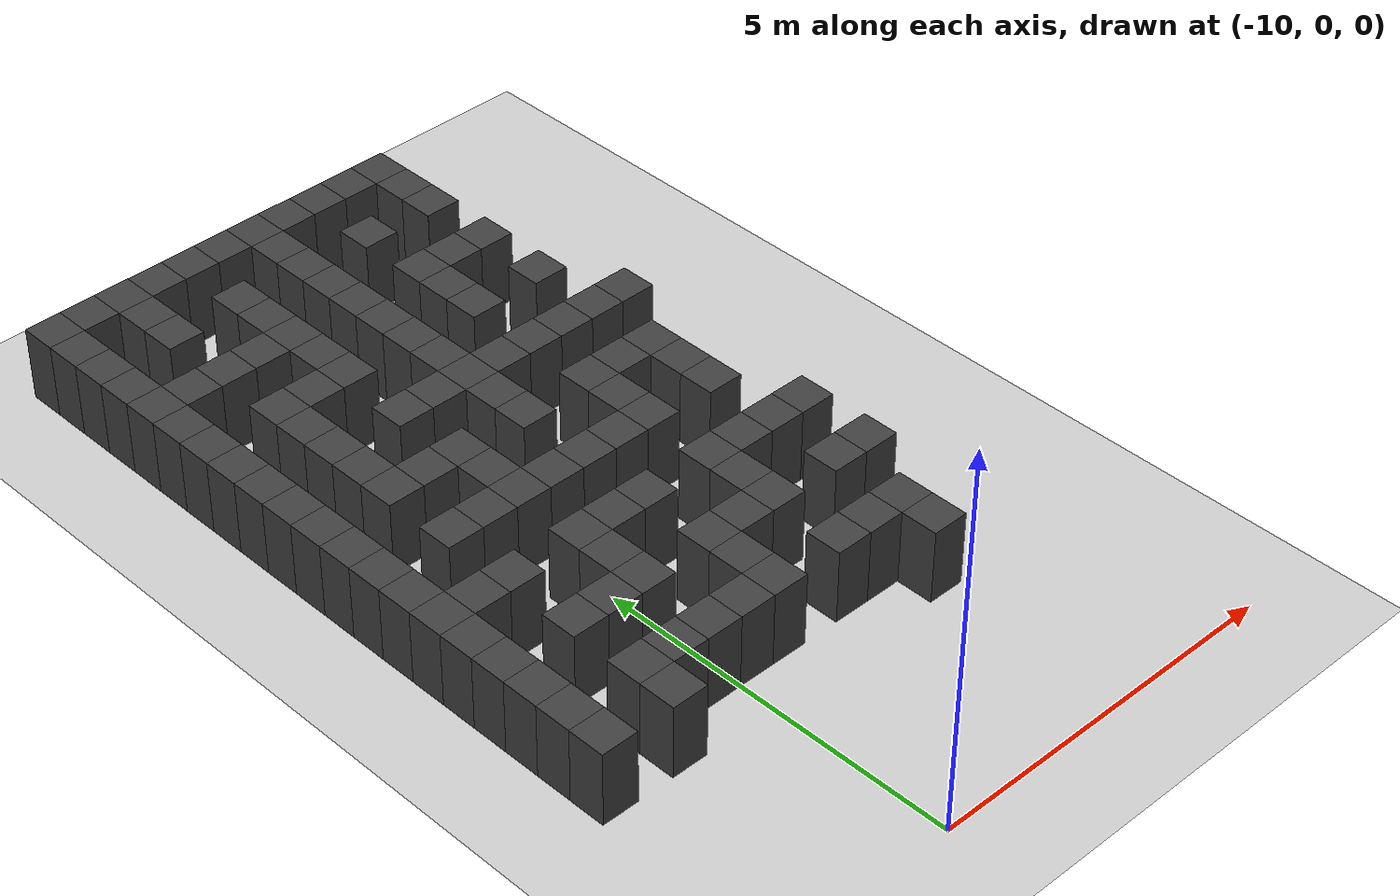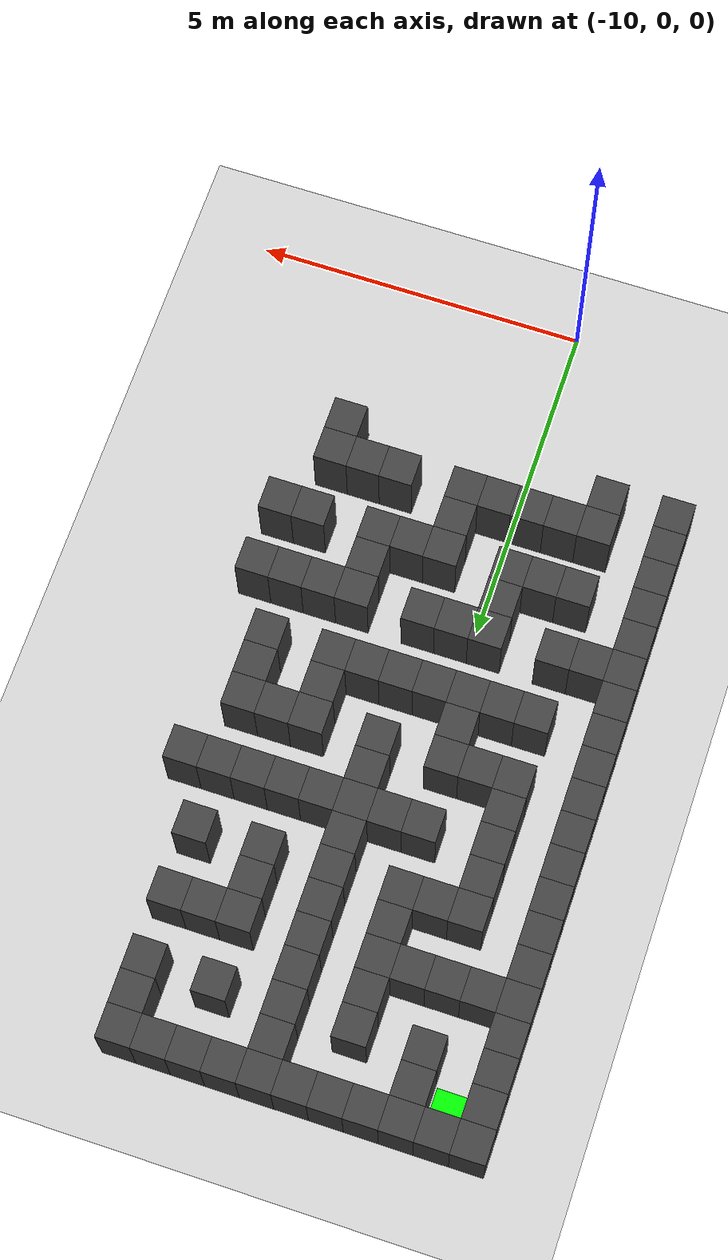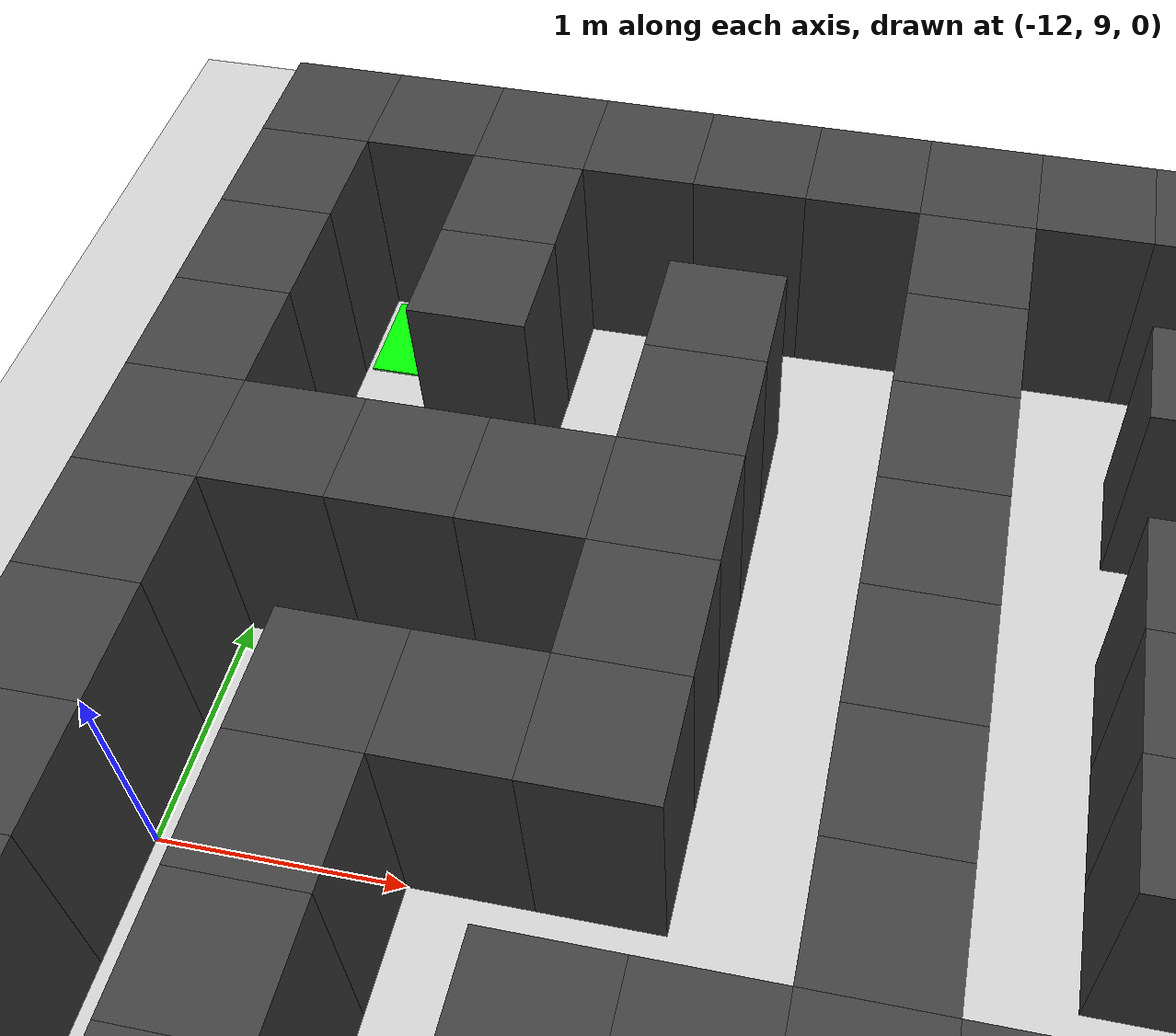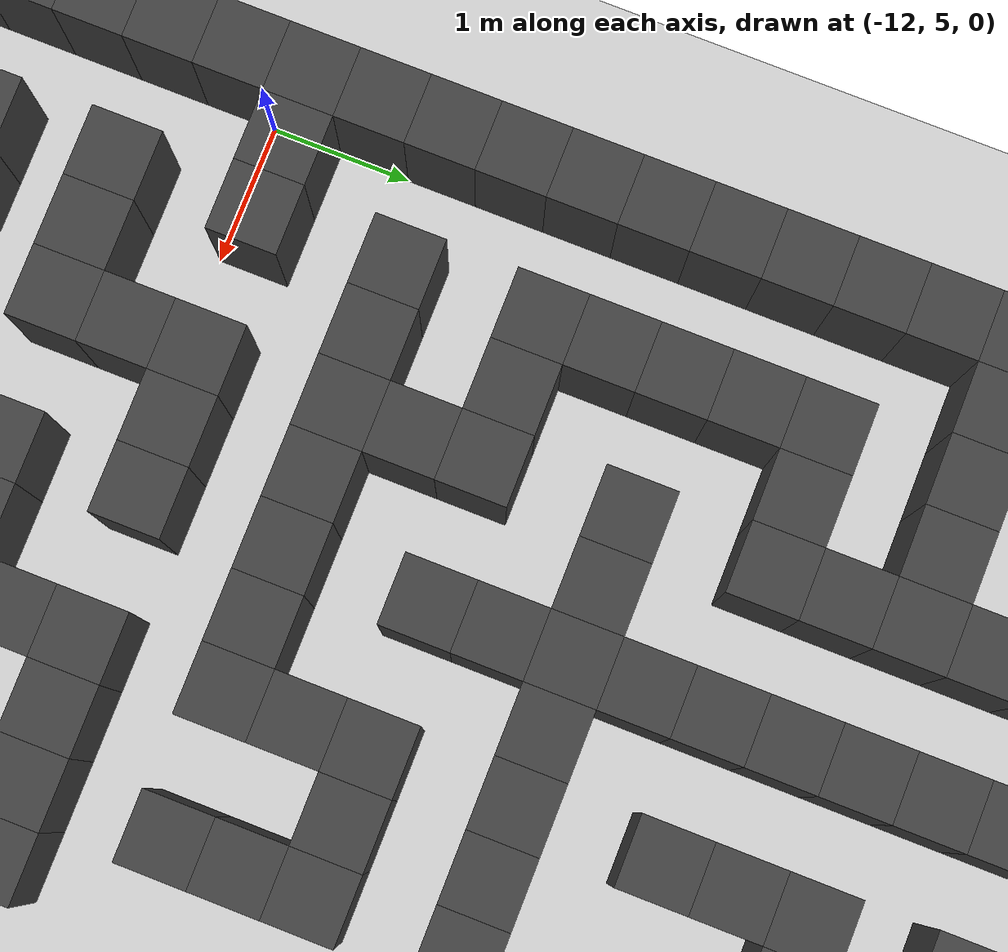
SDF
<sdf version="1.7">
 <world name="map_18596">
  <model name="ground_plane">
   <static>true</static>
   <link name="link">
    <collision name="collision">
     <geometry><plane><normal>0 0 1</normal><size>200 200</size></plane></geometry>
    </collision>
    <visual name="visual">
     <geometry><plane><normal>0 0 1</normal><size>200 200</size></plane></geometry>
     <material><ambient>0.8 0.8 0.8 1</ambient><diffuse>0.8 0.8 0.8 1</diffuse></material>
    </visual>
   </link>
  </model>
  <model name="maze_environment">
   <static>true</static>
   <link name="wall_0">
    <pose>-12.250 12.250 0.500 0 0 0</pose>
    <collision name="col"><geometry><box><size>0.5 0.5 1.0</size></box></geometry></collision>
    <visual name="vis">
     <geometry><box><size>0.5 0.5 1.0</size></box></geometry>
     <material><ambient>0.15 0.15 0.15 1</ambient><diffuse>0.25 0.25 0.25 1</diffuse></material>
    </visual>
   </link>
   <link name="wall_1">
    <pose>-11.750 12.250 0.500 0 0 0</pose>
    <collision name="col"><geometry><box><size>0.5 0.5 1.0</size></box></geometry></collision>
    <visual name="vis">
     <geometry><box><size>0.5 0.5 1.0</size></box></geometry>
     <material><ambient>0.15 0.15 0.15 1</ambient><diffuse>0.25 0.25 0.25 1</diffuse></material>
    </visual>
   </link>
   <link name="wall_2">
    <pose>-11.250 12.250 0.500 0 0 0</pose>
    <collision name="col"><geometry><box><size>0.5 0.5 1.0</size></box></geometry></collision>
    <visual name="vis">
     <geometry><box><size>0.5 0.5 1.0</size></box></geometry>
     <material><ambient>0.15 0.15 0.15 1</ambient><diffuse>0.25 0.25 0.25 1</diffuse></material>
    </visual>
   </link>
   <link name="wall_3">
    <pose>-10.750 12.250 0.500 0 0 0</pose>
    <collision name="col"><geometry><box><size>0.5 0.5 1.0</size></box></geometry></collision>
    <visual name="vis">
     <geometry><box><size>0.5 0.5 1.0</size></box></geometry>
     <material><ambient>0.15 0.15 0.15 1</ambient><diffuse>0.25 0.25 0.25 1</diffuse></material>
    </visual>
   </link>
   <link name="wall_4">
    <pose>-10.250 12.250 0.500 0 0 0</pose>
    <collision name="col"><geometry><box><size>0.5 0.5 1.0</size></box></geometry></collision>
    <visual name="vis">
     <geometry><box><size>0.5 0.5 1.0</size></box></geometry>
     <material><ambient>0.15 0.15 0.15 1</ambient><diffuse>0.25 0.25 0.25 1</diffuse></material>
    </visual>
   </link>
   <link name="wall_5">
    <pose>-9.750 12.250 0.500 0 0 0</pose>
    <collision name="col"><geometry><box><size>0.5 0.5 1.0</size></box></geometry></collision>
    <visual name="vis">
     <geometry><box><size>0.5 0.5 1.0</size></box></geometry>
     <material><ambient>0.15 0.15 0.15 1</ambient><diffuse>0.25 0.25 0.25 1</diffuse></material>
    </visual>
   </link>
   <link name="wall_6">
    <pose>-9.250 12.250 0.500 0 0 0</pose>
    <collision name="col"><geometry><box><size>0.5 0.5 1.0</size></box></geometry></collision>
    <visual name="vis">
     <geometry><box><size>0.5 0.5 1.0</size></box></geometry>
     <material><ambient>0.15 0.15 0.15 1</ambient><diffuse>0.25 0.25 0.25 1</diffuse></material>
    </visual>
   </link>
   <link name="wall_7">
    <pose>-8.750 12.250 0.500 0 0 0</pose>
    <collision name="col"><geometry><box><size>0.5 0.5 1.0</size></box></geometry></collision>
    <visual name="vis">
     <geometry><box><size>0.5 0.5 1.0</size></box></geometry>
     <material><ambient>0.15 0.15 0.15 1</ambient><diffuse>0.25 0.25 0.25 1</diffuse></material>
    </visual>
   </link>
   <link name="wall_8">
    <pose>-8.250 12.250 0.500 0 0 0</pose>
    <collision name="col"><geometry><box><size>0.5 0.5 1.0</size></box></geometry></collision>
    <visual name="vis">
     <geometry><box><size>0.5 0.5 1.0</size></box></geometry>
     <material><ambient>0.15 0.15 0.15 1</ambient><diffuse>0.25 0.25 0.25 1</diffuse></material>
    </visual>
   </link>
   <link name="wall_9">
    <pose>-7.750 12.250 0.500 0 0 0</pose>
    <collision name="col"><geometry><box><size>0.5 0.5 1.0</size></box></geometry></collision>
    <visual name="vis">
     <geometry><box><size>0.5 0.5 1.0</size></box></geometry>
     <material><ambient>0.15 0.15 0.15 1</ambient><diffuse>0.25 0.25 0.25 1</diffuse></material>
    </visual>
   </link>
   <link name="wall_10">
    <pose>-7.250 12.250 0.500 0 0 0</pose>
    <collision name="col"><geometry><box><size>0.5 0.5 1.0</size></box></geometry></collision>
    <visual name="vis">
     <geometry><box><size>0.5 0.5 1.0</size></box></geometry>
     <material><ambient>0.15 0.15 0.15 1</ambient><diffuse>0.25 0.25 0.25 1</diffuse></material>
    </visual>
   </link>
   <link name="wall_50">
    <pose>-12.250 11.750 0.500 0 0 0</pose>
    <collision name="col"><geometry><box><size>0.5 0.5 1.0</size></box></geometry></collision>
    <visual name="vis">
     <geometry><box><size>0.5 0.5 1.0</size></box></geometry>
     <material><ambient>0.15 0.15 0.15 1</ambient><diffuse>0.25 0.25 0.25 1</diffuse></material>
    </visual>
   </link>
   <link name="wall_51">
    <pose>-11.250 11.750 0.500 0 0 0</pose>
    <collision name="col"><geometry><box><size>0.5 0.5 1.0</size></box></geometry></collision>
    <visual name="vis">
     <geometry><box><size>0.5 0.5 1.0</size></box></geometry>
     <material><ambient>0.15 0.15 0.15 1</ambient><diffuse>0.25 0.25 0.25 1</diffuse></material>
    </visual>
   </link>
   <link name="wall_52">
    <pose>-9.250 11.750 0.500 0 0 0</pose>
    <collision name="col"><geometry><box><size>0.5 0.5 1.0</size></box></geometry></collision>
    <visual name="vis">
     <geometry><box><size>0.5 0.5 1.0</size></box></geometry>
     <material><ambient>0.15 0.15 0.15 1</ambient><diffuse>0.25 0.25 0.25 1</diffuse></material>
    </visual>
   </link>
   <link name="wall_53">
    <pose>-7.250 11.750 0.500 0 0 0</pose>
    <collision name="col"><geometry><box><size>0.5 0.5 1.0</size></box></geometry></collision>
    <visual name="vis">
     <geometry><box><size>0.5 0.5 1.0</size></box></geometry>
     <material><ambient>0.15 0.15 0.15 1</ambient><diffuse>0.25 0.25 0.25 1</diffuse></material>
    </visual>
   </link>
   <link name="wall_59">
    <pose>-12.250 11.250 0.500 0 0 0</pose>
    <collision name="col"><geometry><box><size>0.5 0.5 1.0</size></box></geometry></collision>
    <visual name="vis">
     <geometry><box><size>0.5 0.5 1.0</size></box></geometry>
     <material><ambient>0.15 0.15 0.15 1</ambient><diffuse>0.25 0.25 0.25 1</diffuse></material>
    </visual>
   </link>
   <link name="wall_60">
    <pose>-11.250 11.250 0.500 0 0 0</pose>
    <collision name="col"><geometry><box><size>0.5 0.5 1.0</size></box></geometry></collision>
    <visual name="vis">
     <geometry><box><size>0.5 0.5 1.0</size></box></geometry>
     <material><ambient>0.15 0.15 0.15 1</ambient><diffuse>0.25 0.25 0.25 1</diffuse></material>
    </visual>
   </link>
   <link name="wall_61">
    <pose>-10.250 11.250 0.500 0 0 0</pose>
    <collision name="col"><geometry><box><size>0.5 0.5 1.0</size></box></geometry></collision>
    <visual name="vis">
     <geometry><box><size>0.5 0.5 1.0</size></box></geometry>
     <material><ambient>0.15 0.15 0.15 1</ambient><diffuse>0.25 0.25 0.25 1</diffuse></material>
    </visual>
   </link>
   <link name="wall_62">
    <pose>-9.250 11.250 0.500 0 0 0</pose>
    <collision name="col"><geometry><box><size>0.5 0.5 1.0</size></box></geometry></collision>
    <visual name="vis">
     <geometry><box><size>0.5 0.5 1.0</size></box></geometry>
     <material><ambient>0.15 0.15 0.15 1</ambient><diffuse>0.25 0.25 0.25 1</diffuse></material>
    </visual>
   </link>
   <link name="wall_63">
    <pose>-8.250 11.250 0.500 0 0 0</pose>
    <collision name="col"><geometry><box><size>0.5 0.5 1.0</size></box></geometry></collision>
    <visual name="vis">
     <geometry><box><size>0.5 0.5 1.0</size></box></geometry>
     <material><ambient>0.15 0.15 0.15 1</ambient><diffuse>0.25 0.25 0.25 1</diffuse></material>
    </visual>
   </link>
   <link name="wall_64">
    <pose>-7.250 11.250 0.500 0 0 0</pose>
    <collision name="col"><geometry><box><size>0.5 0.5 1.0</size></box></geometry></collision>
    <visual name="vis">
     <geometry><box><size>0.5 0.5 1.0</size></box></geometry>
     <material><ambient>0.15 0.15 0.15 1</ambient><diffuse>0.25 0.25 0.25 1</diffuse></material>
    </visual>
   </link>
   <link name="wall_93">
    <pose>-12.250 10.750 0.500 0 0 0</pose>
    <collision name="col"><geometry><box><size>0.5 0.5 1.0</size></box></geometry></collision>
    <visual name="vis">
     <geometry><box><size>0.5 0.5 1.0</size></box></geometry>
     <material><ambient>0.15 0.15 0.15 1</ambient><diffuse>0.25 0.25 0.25 1</diffuse></material>
    </visual>
   </link>
   <link name="wall_94">
    <pose>-10.250 10.750 0.500 0 0 0</pose>
    <collision name="col"><geometry><box><size>0.5 0.5 1.0</size></box></geometry></collision>
    <visual name="vis">
     <geometry><box><size>0.5 0.5 1.0</size></box></geometry>
     <material><ambient>0.15 0.15 0.15 1</ambient><diffuse>0.25 0.25 0.25 1</diffuse></material>
    </visual>
   </link>
   <link name="wall_95">
    <pose>-9.250 10.750 0.500 0 0 0</pose>
    <collision name="col"><geometry><box><size>0.5 0.5 1.0</size></box></geometry></collision>
    <visual name="vis">
     <geometry><box><size>0.5 0.5 1.0</size></box></geometry>
     <material><ambient>0.15 0.15 0.15 1</ambient><diffuse>0.25 0.25 0.25 1</diffuse></material>
    </visual>
   </link>
   <link name="wall_107">
    <pose>-12.250 10.250 0.500 0 0 0</pose>
    <collision name="col"><geometry><box><size>0.5 0.5 1.0</size></box></geometry></collision>
    <visual name="vis">
     <geometry><box><size>0.5 0.5 1.0</size></box></geometry>
     <material><ambient>0.15 0.15 0.15 1</ambient><diffuse>0.25 0.25 0.25 1</diffuse></material>
    </visual>
   </link>
   <link name="wall_108">
    <pose>-11.750 10.250 0.500 0 0 0</pose>
    <collision name="col"><geometry><box><size>0.5 0.5 1.0</size></box></geometry></collision>
    <visual name="vis">
     <geometry><box><size>0.5 0.5 1.0</size></box></geometry>
     <material><ambient>0.15 0.15 0.15 1</ambient><diffuse>0.25 0.25 0.25 1</diffuse></material>
    </visual>
   </link>
   <link name="wall_109">
    <pose>-11.250 10.250 0.500 0 0 0</pose>
    <collision name="col"><geometry><box><size>0.5 0.5 1.0</size></box></geometry></collision>
    <visual name="vis">
     <geometry><box><size>0.5 0.5 1.0</size></box></geometry>
     <material><ambient>0.15 0.15 0.15 1</ambient><diffuse>0.25 0.25 0.25 1</diffuse></material>
    </visual>
   </link>
   <link name="wall_110">
    <pose>-10.750 10.250 0.500 0 0 0</pose>
    <collision name="col"><geometry><box><size>0.5 0.5 1.0</size></box></geometry></collision>
    <visual name="vis">
     <geometry><box><size>0.5 0.5 1.0</size></box></geometry>
     <material><ambient>0.15 0.15 0.15 1</ambient><diffuse>0.25 0.25 0.25 1</diffuse></material>
    </visual>
   </link>
   <link name="wall_111">
    <pose>-10.250 10.250 0.500 0 0 0</pose>
    <collision name="col"><geometry><box><size>0.5 0.5 1.0</size></box></geometry></collision>
    <visual name="vis">
     <geometry><box><size>0.5 0.5 1.0</size></box></geometry>
     <material><ambient>0.15 0.15 0.15 1</ambient><diffuse>0.25 0.25 0.25 1</diffuse></material>
    </visual>
   </link>
   <link name="wall_112">
    <pose>-9.250 10.250 0.500 0 0 0</pose>
    <collision name="col"><geometry><box><size>0.5 0.5 1.0</size></box></geometry></collision>
    <visual name="vis">
     <geometry><box><size>0.5 0.5 1.0</size></box></geometry>
     <material><ambient>0.15 0.15 0.15 1</ambient><diffuse>0.25 0.25 0.25 1</diffuse></material>
    </visual>
   </link>
   <link name="wall_113">
    <pose>-8.250 10.250 0.500 0 0 0</pose>
    <collision name="col"><geometry><box><size>0.5 0.5 1.0</size></box></geometry></collision>
    <visual name="vis">
     <geometry><box><size>0.5 0.5 1.0</size></box></geometry>
     <material><ambient>0.15 0.15 0.15 1</ambient><diffuse>0.25 0.25 0.25 1</diffuse></material>
    </visual>
   </link>
   <link name="wall_114">
    <pose>-7.750 10.250 0.500 0 0 0</pose>
    <collision name="col"><geometry><box><size>0.5 0.5 1.0</size></box></geometry></collision>
    <visual name="vis">
     <geometry><box><size>0.5 0.5 1.0</size></box></geometry>
     <material><ambient>0.15 0.15 0.15 1</ambient><diffuse>0.25 0.25 0.25 1</diffuse></material>
    </visual>
   </link>
   <link name="wall_115">
    <pose>-7.250 10.250 0.500 0 0 0</pose>
    <collision name="col"><geometry><box><size>0.5 0.5 1.0</size></box></geometry></collision>
    <visual name="vis">
     <geometry><box><size>0.5 0.5 1.0</size></box></geometry>
     <material><ambient>0.15 0.15 0.15 1</ambient><diffuse>0.25 0.25 0.25 1</diffuse></material>
    </visual>
   </link>
   <link name="wall_144">
    <pose>-12.250 9.750 0.500 0 0 0</pose>
    <collision name="col"><geometry><box><size>0.5 0.5 1.0</size></box></geometry></collision>
    <visual name="vis">
     <geometry><box><size>0.5 0.5 1.0</size></box></geometry>
     <material><ambient>0.15 0.15 0.15 1</ambient><diffuse>0.25 0.25 0.25 1</diffuse></material>
    </visual>
   </link>
   <link name="wall_145">
    <pose>-10.250 9.750 0.500 0 0 0</pose>
    <collision name="col"><geometry><box><size>0.5 0.5 1.0</size></box></geometry></collision>
    <visual name="vis">
     <geometry><box><size>0.5 0.5 1.0</size></box></geometry>
     <material><ambient>0.15 0.15 0.15 1</ambient><diffuse>0.25 0.25 0.25 1</diffuse></material>
    </visual>
   </link>
   <link name="wall_146">
    <pose>-9.250 9.750 0.500 0 0 0</pose>
    <collision name="col"><geometry><box><size>0.5 0.5 1.0</size></box></geometry></collision>
    <visual name="vis">
     <geometry><box><size>0.5 0.5 1.0</size></box></geometry>
     <material><ambient>0.15 0.15 0.15 1</ambient><diffuse>0.25 0.25 0.25 1</diffuse></material>
    </visual>
   </link>
   <link name="wall_147">
    <pose>-8.250 9.750 0.500 0 0 0</pose>
    <collision name="col"><geometry><box><size>0.5 0.5 1.0</size></box></geometry></collision>
    <visual name="vis">
     <geometry><box><size>0.5 0.5 1.0</size></box></geometry>
     <material><ambient>0.15 0.15 0.15 1</ambient><diffuse>0.25 0.25 0.25 1</diffuse></material>
    </visual>
   </link>
   <link name="wall_158">
    <pose>-12.250 9.250 0.500 0 0 0</pose>
    <collision name="col"><geometry><box><size>0.5 0.5 1.0</size></box></geometry></collision>
    <visual name="vis">
     <geometry><box><size>0.5 0.5 1.0</size></box></geometry>
     <material><ambient>0.15 0.15 0.15 1</ambient><diffuse>0.25 0.25 0.25 1</diffuse></material>
    </visual>
   </link>
   <link name="wall_159">
    <pose>-11.250 9.250 0.500 0 0 0</pose>
    <collision name="col"><geometry><box><size>0.5 0.5 1.0</size></box></geometry></collision>
    <visual name="vis">
     <geometry><box><size>0.5 0.5 1.0</size></box></geometry>
     <material><ambient>0.15 0.15 0.15 1</ambient><diffuse>0.25 0.25 0.25 1</diffuse></material>
    </visual>
   </link>
   <link name="wall_160">
    <pose>-10.750 9.250 0.500 0 0 0</pose>
    <collision name="col"><geometry><box><size>0.5 0.5 1.0</size></box></geometry></collision>
    <visual name="vis">
     <geometry><box><size>0.5 0.5 1.0</size></box></geometry>
     <material><ambient>0.15 0.15 0.15 1</ambient><diffuse>0.25 0.25 0.25 1</diffuse></material>
    </visual>
   </link>
   <link name="wall_161">
    <pose>-10.250 9.250 0.500 0 0 0</pose>
    <collision name="col"><geometry><box><size>0.5 0.5 1.0</size></box></geometry></collision>
    <visual name="vis">
     <geometry><box><size>0.5 0.5 1.0</size></box></geometry>
     <material><ambient>0.15 0.15 0.15 1</ambient><diffuse>0.25 0.25 0.25 1</diffuse></material>
    </visual>
   </link>
   <link name="wall_162">
    <pose>-9.250 9.250 0.500 0 0 0</pose>
    <collision name="col"><geometry><box><size>0.5 0.5 1.0</size></box></geometry></collision>
    <visual name="vis">
     <geometry><box><size>0.5 0.5 1.0</size></box></geometry>
     <material><ambient>0.15 0.15 0.15 1</ambient><diffuse>0.25 0.25 0.25 1</diffuse></material>
    </visual>
   </link>
   <link name="wall_163">
    <pose>-8.250 9.250 0.500 0 0 0</pose>
    <collision name="col"><geometry><box><size>0.5 0.5 1.0</size></box></geometry></collision>
    <visual name="vis">
     <geometry><box><size>0.5 0.5 1.0</size></box></geometry>
     <material><ambient>0.15 0.15 0.15 1</ambient><diffuse>0.25 0.25 0.25 1</diffuse></material>
    </visual>
   </link>
   <link name="wall_164">
    <pose>-7.250 9.250 0.500 0 0 0</pose>
    <collision name="col"><geometry><box><size>0.5 0.5 1.0</size></box></geometry></collision>
    <visual name="vis">
     <geometry><box><size>0.5 0.5 1.0</size></box></geometry>
     <material><ambient>0.15 0.15 0.15 1</ambient><diffuse>0.25 0.25 0.25 1</diffuse></material>
    </visual>
   </link>
   <link name="wall_196">
    <pose>-12.250 8.750 0.500 0 0 0</pose>
    <collision name="col"><geometry><box><size>0.5 0.5 1.0</size></box></geometry></collision>
    <visual name="vis">
     <geometry><box><size>0.5 0.5 1.0</size></box></geometry>
     <material><ambient>0.15 0.15 0.15 1</ambient><diffuse>0.25 0.25 0.25 1</diffuse></material>
    </visual>
   </link>
   <link name="wall_197">
    <pose>-11.250 8.750 0.500 0 0 0</pose>
    <collision name="col"><geometry><box><size>0.5 0.5 1.0</size></box></geometry></collision>
    <visual name="vis">
     <geometry><box><size>0.5 0.5 1.0</size></box></geometry>
     <material><ambient>0.15 0.15 0.15 1</ambient><diffuse>0.25 0.25 0.25 1</diffuse></material>
    </visual>
   </link>
   <link name="wall_198">
    <pose>-9.250 8.750 0.500 0 0 0</pose>
    <collision name="col"><geometry><box><size>0.5 0.5 1.0</size></box></geometry></collision>
    <visual name="vis">
     <geometry><box><size>0.5 0.5 1.0</size></box></geometry>
     <material><ambient>0.15 0.15 0.15 1</ambient><diffuse>0.25 0.25 0.25 1</diffuse></material>
    </visual>
   </link>
   <link name="wall_208">
    <pose>-12.250 8.250 0.500 0 0 0</pose>
    <collision name="col"><geometry><box><size>0.5 0.5 1.0</size></box></geometry></collision>
    <visual name="vis">
     <geometry><box><size>0.5 0.5 1.0</size></box></geometry>
     <material><ambient>0.15 0.15 0.15 1</ambient><diffuse>0.25 0.25 0.25 1</diffuse></material>
    </visual>
   </link>
   <link name="wall_209">
    <pose>-11.250 8.250 0.500 0 0 0</pose>
    <collision name="col"><geometry><box><size>0.5 0.5 1.0</size></box></geometry></collision>
    <visual name="vis">
     <geometry><box><size>0.5 0.5 1.0</size></box></geometry>
     <material><ambient>0.15 0.15 0.15 1</ambient><diffuse>0.25 0.25 0.25 1</diffuse></material>
    </visual>
   </link>
   <link name="wall_210">
    <pose>-10.250 8.250 0.500 0 0 0</pose>
    <collision name="col"><geometry><box><size>0.5 0.5 1.0</size></box></geometry></collision>
    <visual name="vis">
     <geometry><box><size>0.5 0.5 1.0</size></box></geometry>
     <material><ambient>0.15 0.15 0.15 1</ambient><diffuse>0.25 0.25 0.25 1</diffuse></material>
    </visual>
   </link>
   <link name="wall_211">
    <pose>-9.750 8.250 0.500 0 0 0</pose>
    <collision name="col"><geometry><box><size>0.5 0.5 1.0</size></box></geometry></collision>
    <visual name="vis">
     <geometry><box><size>0.5 0.5 1.0</size></box></geometry>
     <material><ambient>0.15 0.15 0.15 1</ambient><diffuse>0.25 0.25 0.25 1</diffuse></material>
    </visual>
   </link>
   <link name="wall_212">
    <pose>-9.250 8.250 0.500 0 0 0</pose>
    <collision name="col"><geometry><box><size>0.5 0.5 1.0</size></box></geometry></collision>
    <visual name="vis">
     <geometry><box><size>0.5 0.5 1.0</size></box></geometry>
     <material><ambient>0.15 0.15 0.15 1</ambient><diffuse>0.25 0.25 0.25 1</diffuse></material>
    </visual>
   </link>
   <link name="wall_213">
    <pose>-8.750 8.250 0.500 0 0 0</pose>
    <collision name="col"><geometry><box><size>0.5 0.5 1.0</size></box></geometry></collision>
    <visual name="vis">
     <geometry><box><size>0.5 0.5 1.0</size></box></geometry>
     <material><ambient>0.15 0.15 0.15 1</ambient><diffuse>0.25 0.25 0.25 1</diffuse></material>
    </visual>
   </link>
   <link name="wall_214">
    <pose>-8.250 8.250 0.500 0 0 0</pose>
    <collision name="col"><geometry><box><size>0.5 0.5 1.0</size></box></geometry></collision>
    <visual name="vis">
     <geometry><box><size>0.5 0.5 1.0</size></box></geometry>
     <material><ambient>0.15 0.15 0.15 1</ambient><diffuse>0.25 0.25 0.25 1</diffuse></material>
    </visual>
   </link>
   <link name="wall_215">
    <pose>-7.750 8.250 0.500 0 0 0</pose>
    <collision name="col"><geometry><box><size>0.5 0.5 1.0</size></box></geometry></collision>
    <visual name="vis">
     <geometry><box><size>0.5 0.5 1.0</size></box></geometry>
     <material><ambient>0.15 0.15 0.15 1</ambient><diffuse>0.25 0.25 0.25 1</diffuse></material>
    </visual>
   </link>
   <link name="wall_216">
    <pose>-7.250 8.250 0.500 0 0 0</pose>
    <collision name="col"><geometry><box><size>0.5 0.5 1.0</size></box></geometry></collision>
    <visual name="vis">
     <geometry><box><size>0.5 0.5 1.0</size></box></geometry>
     <material><ambient>0.15 0.15 0.15 1</ambient><diffuse>0.25 0.25 0.25 1</diffuse></material>
    </visual>
   </link>
   <link name="wall_217">
    <pose>-6.750 8.250 0.500 0 0 0</pose>
    <collision name="col"><geometry><box><size>0.5 0.5 1.0</size></box></geometry></collision>
    <visual name="vis">
     <geometry><box><size>0.5 0.5 1.0</size></box></geometry>
     <material><ambient>0.15 0.15 0.15 1</ambient><diffuse>0.25 0.25 0.25 1</diffuse></material>
    </visual>
   </link>
   <link name="wall_245">
    <pose>-12.250 7.750 0.500 0 0 0</pose>
    <collision name="col"><geometry><box><size>0.5 0.5 1.0</size></box></geometry></collision>
    <visual name="vis">
     <geometry><box><size>0.5 0.5 1.0</size></box></geometry>
     <material><ambient>0.15 0.15 0.15 1</ambient><diffuse>0.25 0.25 0.25 1</diffuse></material>
    </visual>
   </link>
   <link name="wall_246">
    <pose>-11.250 7.750 0.500 0 0 0</pose>
    <collision name="col"><geometry><box><size>0.5 0.5 1.0</size></box></geometry></collision>
    <visual name="vis">
     <geometry><box><size>0.5 0.5 1.0</size></box></geometry>
     <material><ambient>0.15 0.15 0.15 1</ambient><diffuse>0.25 0.25 0.25 1</diffuse></material>
    </visual>
   </link>
   <link name="wall_247">
    <pose>-9.250 7.750 0.500 0 0 0</pose>
    <collision name="col"><geometry><box><size>0.5 0.5 1.0</size></box></geometry></collision>
    <visual name="vis">
     <geometry><box><size>0.5 0.5 1.0</size></box></geometry>
     <material><ambient>0.15 0.15 0.15 1</ambient><diffuse>0.25 0.25 0.25 1</diffuse></material>
    </visual>
   </link>
   <link name="wall_261">
    <pose>-12.250 7.250 0.500 0 0 0</pose>
    <collision name="col"><geometry><box><size>0.5 0.5 1.0</size></box></geometry></collision>
    <visual name="vis">
     <geometry><box><size>0.5 0.5 1.0</size></box></geometry>
     <material><ambient>0.15 0.15 0.15 1</ambient><diffuse>0.25 0.25 0.25 1</diffuse></material>
    </visual>
   </link>
   <link name="wall_262">
    <pose>-11.250 7.250 0.500 0 0 0</pose>
    <collision name="col"><geometry><box><size>0.5 0.5 1.0</size></box></geometry></collision>
    <visual name="vis">
     <geometry><box><size>0.5 0.5 1.0</size></box></geometry>
     <material><ambient>0.15 0.15 0.15 1</ambient><diffuse>0.25 0.25 0.25 1</diffuse></material>
    </visual>
   </link>
   <link name="wall_263">
    <pose>-10.750 7.250 0.500 0 0 0</pose>
    <collision name="col"><geometry><box><size>0.5 0.5 1.0</size></box></geometry></collision>
    <visual name="vis">
     <geometry><box><size>0.5 0.5 1.0</size></box></geometry>
     <material><ambient>0.15 0.15 0.15 1</ambient><diffuse>0.25 0.25 0.25 1</diffuse></material>
    </visual>
   </link>
   <link name="wall_264">
    <pose>-10.250 7.250 0.500 0 0 0</pose>
    <collision name="col"><geometry><box><size>0.5 0.5 1.0</size></box></geometry></collision>
    <visual name="vis">
     <geometry><box><size>0.5 0.5 1.0</size></box></geometry>
     <material><ambient>0.15 0.15 0.15 1</ambient><diffuse>0.25 0.25 0.25 1</diffuse></material>
    </visual>
   </link>
   <link name="wall_265">
    <pose>-9.250 7.250 0.500 0 0 0</pose>
    <collision name="col"><geometry><box><size>0.5 0.5 1.0</size></box></geometry></collision>
    <visual name="vis">
     <geometry><box><size>0.5 0.5 1.0</size></box></geometry>
     <material><ambient>0.15 0.15 0.15 1</ambient><diffuse>0.25 0.25 0.25 1</diffuse></material>
    </visual>
   </link>
   <link name="wall_266">
    <pose>-8.250 7.250 0.500 0 0 0</pose>
    <collision name="col"><geometry><box><size>0.5 0.5 1.0</size></box></geometry></collision>
    <visual name="vis">
     <geometry><box><size>0.5 0.5 1.0</size></box></geometry>
     <material><ambient>0.15 0.15 0.15 1</ambient><diffuse>0.25 0.25 0.25 1</diffuse></material>
    </visual>
   </link>
   <link name="wall_267">
    <pose>-7.750 7.250 0.500 0 0 0</pose>
    <collision name="col"><geometry><box><size>0.5 0.5 1.0</size></box></geometry></collision>
    <visual name="vis">
     <geometry><box><size>0.5 0.5 1.0</size></box></geometry>
     <material><ambient>0.15 0.15 0.15 1</ambient><diffuse>0.25 0.25 0.25 1</diffuse></material>
    </visual>
   </link>
   <link name="wall_268">
    <pose>-7.250 7.250 0.500 0 0 0</pose>
    <collision name="col"><geometry><box><size>0.5 0.5 1.0</size></box></geometry></collision>
    <visual name="vis">
     <geometry><box><size>0.5 0.5 1.0</size></box></geometry>
     <material><ambient>0.15 0.15 0.15 1</ambient><diffuse>0.25 0.25 0.25 1</diffuse></material>
    </visual>
   </link>
   <link name="wall_293">
    <pose>-12.250 6.750 0.500 0 0 0</pose>
    <collision name="col"><geometry><box><size>0.5 0.5 1.0</size></box></geometry></collision>
    <visual name="vis">
     <geometry><box><size>0.5 0.5 1.0</size></box></geometry>
     <material><ambient>0.15 0.15 0.15 1</ambient><diffuse>0.25 0.25 0.25 1</diffuse></material>
    </visual>
   </link>
   <link name="wall_294">
    <pose>-10.250 6.750 0.500 0 0 0</pose>
    <collision name="col"><geometry><box><size>0.5 0.5 1.0</size></box></geometry></collision>
    <visual name="vis">
     <geometry><box><size>0.5 0.5 1.0</size></box></geometry>
     <material><ambient>0.15 0.15 0.15 1</ambient><diffuse>0.25 0.25 0.25 1</diffuse></material>
    </visual>
   </link>
   <link name="wall_295">
    <pose>-8.250 6.750 0.500 0 0 0</pose>
    <collision name="col"><geometry><box><size>0.5 0.5 1.0</size></box></geometry></collision>
    <visual name="vis">
     <geometry><box><size>0.5 0.5 1.0</size></box></geometry>
     <material><ambient>0.15 0.15 0.15 1</ambient><diffuse>0.25 0.25 0.25 1</diffuse></material>
    </visual>
   </link>
   <link name="wall_296">
    <pose>-7.250 6.750 0.500 0 0 0</pose>
    <collision name="col"><geometry><box><size>0.5 0.5 1.0</size></box></geometry></collision>
    <visual name="vis">
     <geometry><box><size>0.5 0.5 1.0</size></box></geometry>
     <material><ambient>0.15 0.15 0.15 1</ambient><diffuse>0.25 0.25 0.25 1</diffuse></material>
    </visual>
   </link>
   <link name="wall_307">
    <pose>-12.250 6.250 0.500 0 0 0</pose>
    <collision name="col"><geometry><box><size>0.5 0.5 1.0</size></box></geometry></collision>
    <visual name="vis">
     <geometry><box><size>0.5 0.5 1.0</size></box></geometry>
     <material><ambient>0.15 0.15 0.15 1</ambient><diffuse>0.25 0.25 0.25 1</diffuse></material>
    </visual>
   </link>
   <link name="wall_308">
    <pose>-11.250 6.250 0.500 0 0 0</pose>
    <collision name="col"><geometry><box><size>0.5 0.5 1.0</size></box></geometry></collision>
    <visual name="vis">
     <geometry><box><size>0.5 0.5 1.0</size></box></geometry>
     <material><ambient>0.15 0.15 0.15 1</ambient><diffuse>0.25 0.25 0.25 1</diffuse></material>
    </visual>
   </link>
   <link name="wall_309">
    <pose>-10.750 6.250 0.500 0 0 0</pose>
    <collision name="col"><geometry><box><size>0.5 0.5 1.0</size></box></geometry></collision>
    <visual name="vis">
     <geometry><box><size>0.5 0.5 1.0</size></box></geometry>
     <material><ambient>0.15 0.15 0.15 1</ambient><diffuse>0.25 0.25 0.25 1</diffuse></material>
    </visual>
   </link>
   <link name="wall_310">
    <pose>-10.250 6.250 0.500 0 0 0</pose>
    <collision name="col"><geometry><box><size>0.5 0.5 1.0</size></box></geometry></collision>
    <visual name="vis">
     <geometry><box><size>0.5 0.5 1.0</size></box></geometry>
     <material><ambient>0.15 0.15 0.15 1</ambient><diffuse>0.25 0.25 0.25 1</diffuse></material>
    </visual>
   </link>
   <link name="wall_311">
    <pose>-9.750 6.250 0.500 0 0 0</pose>
    <collision name="col"><geometry><box><size>0.5 0.5 1.0</size></box></geometry></collision>
    <visual name="vis">
     <geometry><box><size>0.5 0.5 1.0</size></box></geometry>
     <material><ambient>0.15 0.15 0.15 1</ambient><diffuse>0.25 0.25 0.25 1</diffuse></material>
    </visual>
   </link>
   <link name="wall_312">
    <pose>-9.250 6.250 0.500 0 0 0</pose>
    <collision name="col"><geometry><box><size>0.5 0.5 1.0</size></box></geometry></collision>
    <visual name="vis">
     <geometry><box><size>0.5 0.5 1.0</size></box></geometry>
     <material><ambient>0.15 0.15 0.15 1</ambient><diffuse>0.25 0.25 0.25 1</diffuse></material>
    </visual>
   </link>
   <link name="wall_313">
    <pose>-8.750 6.250 0.500 0 0 0</pose>
    <collision name="col"><geometry><box><size>0.5 0.5 1.0</size></box></geometry></collision>
    <visual name="vis">
     <geometry><box><size>0.5 0.5 1.0</size></box></geometry>
     <material><ambient>0.15 0.15 0.15 1</ambient><diffuse>0.25 0.25 0.25 1</diffuse></material>
    </visual>
   </link>
   <link name="wall_314">
    <pose>-8.250 6.250 0.500 0 0 0</pose>
    <collision name="col"><geometry><box><size>0.5 0.5 1.0</size></box></geometry></collision>
    <visual name="vis">
     <geometry><box><size>0.5 0.5 1.0</size></box></geometry>
     <material><ambient>0.15 0.15 0.15 1</ambient><diffuse>0.25 0.25 0.25 1</diffuse></material>
    </visual>
   </link>
   <link name="wall_315">
    <pose>-7.250 6.250 0.500 0 0 0</pose>
    <collision name="col"><geometry><box><size>0.5 0.5 1.0</size></box></geometry></collision>
    <visual name="vis">
     <geometry><box><size>0.5 0.5 1.0</size></box></geometry>
     <material><ambient>0.15 0.15 0.15 1</ambient><diffuse>0.25 0.25 0.25 1</diffuse></material>
    </visual>
   </link>
   <link name="wall_345">
    <pose>-12.250 5.750 0.500 0 0 0</pose>
    <collision name="col"><geometry><box><size>0.5 0.5 1.0</size></box></geometry></collision>
    <visual name="vis">
     <geometry><box><size>0.5 0.5 1.0</size></box></geometry>
     <material><ambient>0.15 0.15 0.15 1</ambient><diffuse>0.25 0.25 0.25 1</diffuse></material>
    </visual>
   </link>
   <link name="wall_355">
    <pose>-12.250 5.250 0.500 0 0 0</pose>
    <collision name="col"><geometry><box><size>0.5 0.5 1.0</size></box></geometry></collision>
    <visual name="vis">
     <geometry><box><size>0.5 0.5 1.0</size></box></geometry>
     <material><ambient>0.15 0.15 0.15 1</ambient><diffuse>0.25 0.25 0.25 1</diffuse></material>
    </visual>
   </link>
   <link name="wall_356">
    <pose>-11.750 5.250 0.500 0 0 0</pose>
    <collision name="col"><geometry><box><size>0.5 0.5 1.0</size></box></geometry></collision>
    <visual name="vis">
     <geometry><box><size>0.5 0.5 1.0</size></box></geometry>
     <material><ambient>0.15 0.15 0.15 1</ambient><diffuse>0.25 0.25 0.25 1</diffuse></material>
    </visual>
   </link>
   <link name="wall_357">
    <pose>-11.250 5.250 0.500 0 0 0</pose>
    <collision name="col"><geometry><box><size>0.5 0.5 1.0</size></box></geometry></collision>
    <visual name="vis">
     <geometry><box><size>0.5 0.5 1.0</size></box></geometry>
     <material><ambient>0.15 0.15 0.15 1</ambient><diffuse>0.25 0.25 0.25 1</diffuse></material>
    </visual>
   </link>
   <link name="wall_358">
    <pose>-10.250 5.250 0.500 0 0 0</pose>
    <collision name="col"><geometry><box><size>0.5 0.5 1.0</size></box></geometry></collision>
    <visual name="vis">
     <geometry><box><size>0.5 0.5 1.0</size></box></geometry>
     <material><ambient>0.15 0.15 0.15 1</ambient><diffuse>0.25 0.25 0.25 1</diffuse></material>
    </visual>
   </link>
   <link name="wall_359">
    <pose>-9.750 5.250 0.500 0 0 0</pose>
    <collision name="col"><geometry><box><size>0.5 0.5 1.0</size></box></geometry></collision>
    <visual name="vis">
     <geometry><box><size>0.5 0.5 1.0</size></box></geometry>
     <material><ambient>0.15 0.15 0.15 1</ambient><diffuse>0.25 0.25 0.25 1</diffuse></material>
    </visual>
   </link>
   <link name="wall_360">
    <pose>-9.250 5.250 0.500 0 0 0</pose>
    <collision name="col"><geometry><box><size>0.5 0.5 1.0</size></box></geometry></collision>
    <visual name="vis">
     <geometry><box><size>0.5 0.5 1.0</size></box></geometry>
     <material><ambient>0.15 0.15 0.15 1</ambient><diffuse>0.25 0.25 0.25 1</diffuse></material>
    </visual>
   </link>
   <link name="wall_361">
    <pose>-8.250 5.250 0.500 0 0 0</pose>
    <collision name="col"><geometry><box><size>0.5 0.5 1.0</size></box></geometry></collision>
    <visual name="vis">
     <geometry><box><size>0.5 0.5 1.0</size></box></geometry>
     <material><ambient>0.15 0.15 0.15 1</ambient><diffuse>0.25 0.25 0.25 1</diffuse></material>
    </visual>
   </link>
   <link name="wall_362">
    <pose>-7.750 5.250 0.500 0 0 0</pose>
    <collision name="col"><geometry><box><size>0.5 0.5 1.0</size></box></geometry></collision>
    <visual name="vis">
     <geometry><box><size>0.5 0.5 1.0</size></box></geometry>
     <material><ambient>0.15 0.15 0.15 1</ambient><diffuse>0.25 0.25 0.25 1</diffuse></material>
    </visual>
   </link>
   <link name="wall_363">
    <pose>-7.250 5.250 0.500 0 0 0</pose>
    <collision name="col"><geometry><box><size>0.5 0.5 1.0</size></box></geometry></collision>
    <visual name="vis">
     <geometry><box><size>0.5 0.5 1.0</size></box></geometry>
     <material><ambient>0.15 0.15 0.15 1</ambient><diffuse>0.25 0.25 0.25 1</diffuse></material>
    </visual>
   </link>
   <link name="wall_364">
    <pose>-6.750 5.250 0.500 0 0 0</pose>
    <collision name="col"><geometry><box><size>0.5 0.5 1.0</size></box></geometry></collision>
    <visual name="vis">
     <geometry><box><size>0.5 0.5 1.0</size></box></geometry>
     <material><ambient>0.15 0.15 0.15 1</ambient><diffuse>0.25 0.25 0.25 1</diffuse></material>
    </visual>
   </link>
   <link name="wall_395">
    <pose>-12.250 4.750 0.500 0 0 0</pose>
    <collision name="col"><geometry><box><size>0.5 0.5 1.0</size></box></geometry></collision>
    <visual name="vis">
     <geometry><box><size>0.5 0.5 1.0</size></box></geometry>
     <material><ambient>0.15 0.15 0.15 1</ambient><diffuse>0.25 0.25 0.25 1</diffuse></material>
    </visual>
   </link>
   <link name="wall_396">
    <pose>-10.250 4.750 0.500 0 0 0</pose>
    <collision name="col"><geometry><box><size>0.5 0.5 1.0</size></box></geometry></collision>
    <visual name="vis">
     <geometry><box><size>0.5 0.5 1.0</size></box></geometry>
     <material><ambient>0.15 0.15 0.15 1</ambient><diffuse>0.25 0.25 0.25 1</diffuse></material>
    </visual>
   </link>
   <link name="wall_397">
    <pose>-8.250 4.750 0.500 0 0 0</pose>
    <collision name="col"><geometry><box><size>0.5 0.5 1.0</size></box></geometry></collision>
    <visual name="vis">
     <geometry><box><size>0.5 0.5 1.0</size></box></geometry>
     <material><ambient>0.15 0.15 0.15 1</ambient><diffuse>0.25 0.25 0.25 1</diffuse></material>
    </visual>
   </link>
   <link name="wall_409">
    <pose>-12.250 4.250 0.500 0 0 0</pose>
    <collision name="col"><geometry><box><size>0.5 0.5 1.0</size></box></geometry></collision>
    <visual name="vis">
     <geometry><box><size>0.5 0.5 1.0</size></box></geometry>
     <material><ambient>0.15 0.15 0.15 1</ambient><diffuse>0.25 0.25 0.25 1</diffuse></material>
    </visual>
   </link>
   <link name="wall_410">
    <pose>-11.250 4.250 0.500 0 0 0</pose>
    <collision name="col"><geometry><box><size>0.5 0.5 1.0</size></box></geometry></collision>
    <visual name="vis">
     <geometry><box><size>0.5 0.5 1.0</size></box></geometry>
     <material><ambient>0.15 0.15 0.15 1</ambient><diffuse>0.25 0.25 0.25 1</diffuse></material>
    </visual>
   </link>
   <link name="wall_411">
    <pose>-10.750 4.250 0.500 0 0 0</pose>
    <collision name="col"><geometry><box><size>0.5 0.5 1.0</size></box></geometry></collision>
    <visual name="vis">
     <geometry><box><size>0.5 0.5 1.0</size></box></geometry>
     <material><ambient>0.15 0.15 0.15 1</ambient><diffuse>0.25 0.25 0.25 1</diffuse></material>
    </visual>
   </link>
   <link name="wall_412">
    <pose>-10.250 4.250 0.500 0 0 0</pose>
    <collision name="col"><geometry><box><size>0.5 0.5 1.0</size></box></geometry></collision>
    <visual name="vis">
     <geometry><box><size>0.5 0.5 1.0</size></box></geometry>
     <material><ambient>0.15 0.15 0.15 1</ambient><diffuse>0.25 0.25 0.25 1</diffuse></material>
    </visual>
   </link>
   <link name="wall_413">
    <pose>-9.250 4.250 0.500 0 0 0</pose>
    <collision name="col"><geometry><box><size>0.5 0.5 1.0</size></box></geometry></collision>
    <visual name="vis">
     <geometry><box><size>0.5 0.5 1.0</size></box></geometry>
     <material><ambient>0.15 0.15 0.15 1</ambient><diffuse>0.25 0.25 0.25 1</diffuse></material>
    </visual>
   </link>
   <link name="wall_414">
    <pose>-8.750 4.250 0.500 0 0 0</pose>
    <collision name="col"><geometry><box><size>0.5 0.5 1.0</size></box></geometry></collision>
    <visual name="vis">
     <geometry><box><size>0.5 0.5 1.0</size></box></geometry>
     <material><ambient>0.15 0.15 0.15 1</ambient><diffuse>0.25 0.25 0.25 1</diffuse></material>
    </visual>
   </link>
   <link name="wall_415">
    <pose>-8.250 4.250 0.500 0 0 0</pose>
    <collision name="col"><geometry><box><size>0.5 0.5 1.0</size></box></geometry></collision>
    <visual name="vis">
     <geometry><box><size>0.5 0.5 1.0</size></box></geometry>
     <material><ambient>0.15 0.15 0.15 1</ambient><diffuse>0.25 0.25 0.25 1</diffuse></material>
    </visual>
   </link>
   <link name="wall_416">
    <pose>-7.250 4.250 0.500 0 0 0</pose>
    <collision name="col"><geometry><box><size>0.5 0.5 1.0</size></box></geometry></collision>
    <visual name="vis">
     <geometry><box><size>0.5 0.5 1.0</size></box></geometry>
     <material><ambient>0.15 0.15 0.15 1</ambient><diffuse>0.25 0.25 0.25 1</diffuse></material>
    </visual>
   </link>
   <link name="wall_417">
    <pose>-6.750 4.250 0.500 0 0 0</pose>
    <collision name="col"><geometry><box><size>0.5 0.5 1.0</size></box></geometry></collision>
    <visual name="vis">
     <geometry><box><size>0.5 0.5 1.0</size></box></geometry>
     <material><ambient>0.15 0.15 0.15 1</ambient><diffuse>0.25 0.25 0.25 1</diffuse></material>
    </visual>
   </link>
   <link name="wall_444">
    <pose>-12.250 3.750 0.500 0 0 0</pose>
    <collision name="col"><geometry><box><size>0.5 0.5 1.0</size></box></geometry></collision>
    <visual name="vis">
     <geometry><box><size>0.5 0.5 1.0</size></box></geometry>
     <material><ambient>0.15 0.15 0.15 1</ambient><diffuse>0.25 0.25 0.25 1</diffuse></material>
    </visual>
   </link>
   <link name="wall_445">
    <pose>-9.250 3.750 0.500 0 0 0</pose>
    <collision name="col"><geometry><box><size>0.5 0.5 1.0</size></box></geometry></collision>
    <visual name="vis">
     <geometry><box><size>0.5 0.5 1.0</size></box></geometry>
     <material><ambient>0.15 0.15 0.15 1</ambient><diffuse>0.25 0.25 0.25 1</diffuse></material>
    </visual>
   </link>
   <link name="wall_458">
    <pose>-12.250 3.250 0.500 0 0 0</pose>
    <collision name="col"><geometry><box><size>0.5 0.5 1.0</size></box></geometry></collision>
    <visual name="vis">
     <geometry><box><size>0.5 0.5 1.0</size></box></geometry>
     <material><ambient>0.15 0.15 0.15 1</ambient><diffuse>0.25 0.25 0.25 1</diffuse></material>
    </visual>
   </link>
   <link name="wall_459">
    <pose>-11.250 3.250 0.500 0 0 0</pose>
    <collision name="col"><geometry><box><size>0.5 0.5 1.0</size></box></geometry></collision>
    <visual name="vis">
     <geometry><box><size>0.5 0.5 1.0</size></box></geometry>
     <material><ambient>0.15 0.15 0.15 1</ambient><diffuse>0.25 0.25 0.25 1</diffuse></material>
    </visual>
   </link>
   <link name="wall_460">
    <pose>-10.750 3.250 0.500 0 0 0</pose>
    <collision name="col"><geometry><box><size>0.5 0.5 1.0</size></box></geometry></collision>
    <visual name="vis">
     <geometry><box><size>0.5 0.5 1.0</size></box></geometry>
     <material><ambient>0.15 0.15 0.15 1</ambient><diffuse>0.25 0.25 0.25 1</diffuse></material>
    </visual>
   </link>
   <link name="wall_461">
    <pose>-10.250 3.250 0.500 0 0 0</pose>
    <collision name="col"><geometry><box><size>0.5 0.5 1.0</size></box></geometry></collision>
    <visual name="vis">
     <geometry><box><size>0.5 0.5 1.0</size></box></geometry>
     <material><ambient>0.15 0.15 0.15 1</ambient><diffuse>0.25 0.25 0.25 1</diffuse></material>
    </visual>
   </link>
   <link name="wall_462">
    <pose>-9.750 3.250 0.500 0 0 0</pose>
    <collision name="col"><geometry><box><size>0.5 0.5 1.0</size></box></geometry></collision>
    <visual name="vis">
     <geometry><box><size>0.5 0.5 1.0</size></box></geometry>
     <material><ambient>0.15 0.15 0.15 1</ambient><diffuse>0.25 0.25 0.25 1</diffuse></material>
    </visual>
   </link>
   <link name="wall_463">
    <pose>-9.250 3.250 0.500 0 0 0</pose>
    <collision name="col"><geometry><box><size>0.5 0.5 1.0</size></box></geometry></collision>
    <visual name="vis">
     <geometry><box><size>0.5 0.5 1.0</size></box></geometry>
     <material><ambient>0.15 0.15 0.15 1</ambient><diffuse>0.25 0.25 0.25 1</diffuse></material>
    </visual>
   </link>
   <link name="wall_464">
    <pose>-8.250 3.250 0.500 0 0 0</pose>
    <collision name="col"><geometry><box><size>0.5 0.5 1.0</size></box></geometry></collision>
    <visual name="vis">
     <geometry><box><size>0.5 0.5 1.0</size></box></geometry>
     <material><ambient>0.15 0.15 0.15 1</ambient><diffuse>0.25 0.25 0.25 1</diffuse></material>
    </visual>
   </link>
   <link name="wall_465">
    <pose>-7.750 3.250 0.500 0 0 0</pose>
    <collision name="col"><geometry><box><size>0.5 0.5 1.0</size></box></geometry></collision>
    <visual name="vis">
     <geometry><box><size>0.5 0.5 1.0</size></box></geometry>
     <material><ambient>0.15 0.15 0.15 1</ambient><diffuse>0.25 0.25 0.25 1</diffuse></material>
    </visual>
   </link>
   <link name="wall_466">
    <pose>-7.250 3.250 0.500 0 0 0</pose>
    <collision name="col"><geometry><box><size>0.5 0.5 1.0</size></box></geometry></collision>
    <visual name="vis">
     <geometry><box><size>0.5 0.5 1.0</size></box></geometry>
     <material><ambient>0.15 0.15 0.15 1</ambient><diffuse>0.25 0.25 0.25 1</diffuse></material>
    </visual>
   </link>
   <link name="wall_495">
    <pose>-12.250 2.750 0.500 0 0 0</pose>
    <collision name="col"><geometry><box><size>0.5 0.5 1.0</size></box></geometry></collision>
    <visual name="vis">
     <geometry><box><size>0.5 0.5 1.0</size></box></geometry>
     <material><ambient>0.15 0.15 0.15 1</ambient><diffuse>0.25 0.25 0.25 1</diffuse></material>
    </visual>
   </link>
   <link name="wall_496">
    <pose>-11.250 2.750 0.500 0 0 0</pose>
    <collision name="col"><geometry><box><size>0.5 0.5 1.0</size></box></geometry></collision>
    <visual name="vis">
     <geometry><box><size>0.5 0.5 1.0</size></box></geometry>
     <material><ambient>0.15 0.15 0.15 1</ambient><diffuse>0.25 0.25 0.25 1</diffuse></material>
    </visual>
   </link>
   <link name="wall_497">
    <pose>-7.250 2.750 0.500 0 0 0</pose>
    <collision name="col"><geometry><box><size>0.5 0.5 1.0</size></box></geometry></collision>
    <visual name="vis">
     <geometry><box><size>0.5 0.5 1.0</size></box></geometry>
     <material><ambient>0.15 0.15 0.15 1</ambient><diffuse>0.25 0.25 0.25 1</diffuse></material>
    </visual>
   </link>
   <link name="start_zone">
    <pose>-11.750 11.750 0.005 0 0 0</pose>
    <visual name="vis">
     <geometry><box><size>0.45 0.45 0.01</size></box></geometry>
     <material>
      <ambient>0.0 1.0 0.0 1</ambient>
      <diffuse>0.0 1.0 0.0 1</diffuse>
      <emissive>0.00 0.60 0.00 1</emissive>
     </material>
    </visual>
   </link>
  </model>
 </world>
</sdf>
